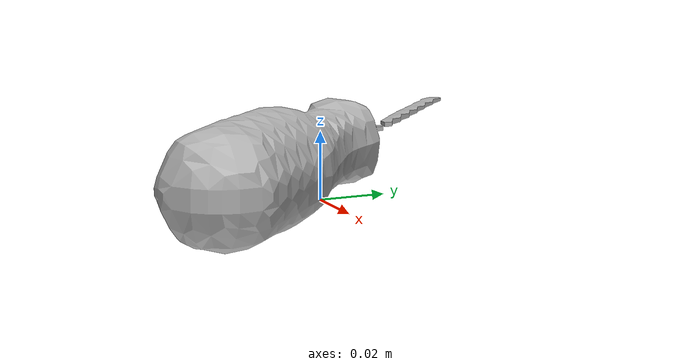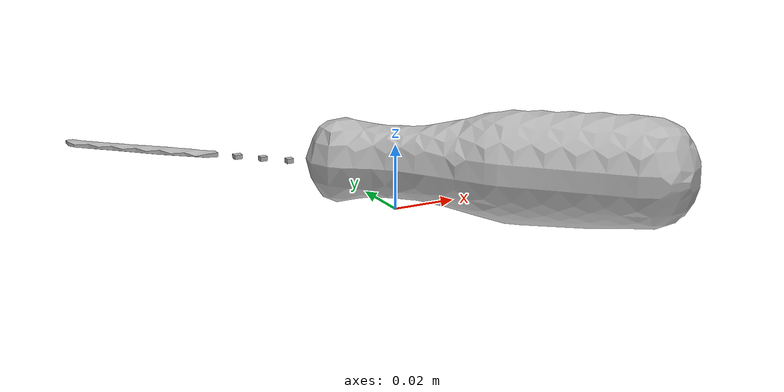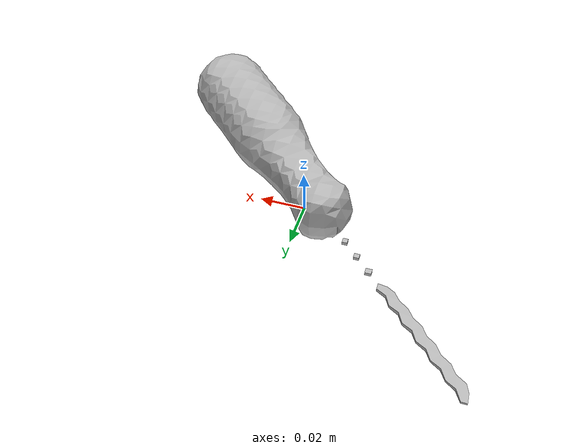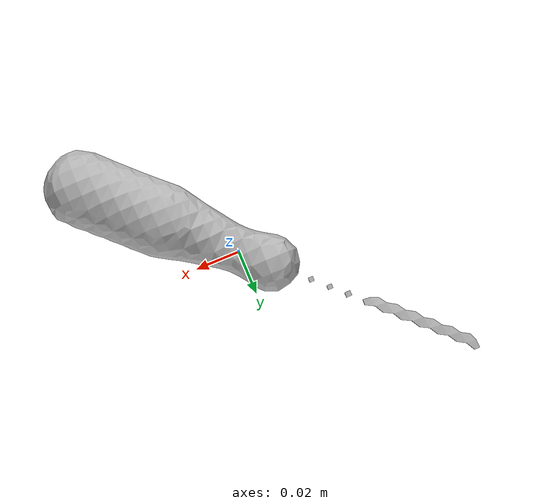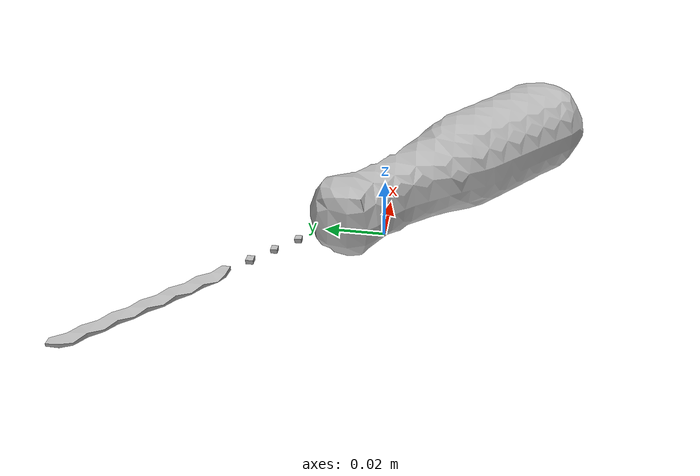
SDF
<?xml version='1.0'?>
<sdf version="1.4">
  <model name="flat_screwdriver">
    <static>false</static>
    <link name="link">
      <inertial>
        <pose>0.023228351441964463 -0.02270556071884342 0.016179821688211804 -1.685465166296971 -1.2285699396955838 0.9119711789659977</pose>
        <mass>7.621626182656017e-05</mass>
        <inertia>
          <ixx>1.0455872762990073e-07</ixx>
          <ixy>1.2978673122254933e-23</ixy>
          <ixz>7.690434192648382e-24</ixz>
          <iyy>1.045355134114841e-07</iyy>
          <iyz>8.454789472824443e-24</iyz>
          <izz>8.5096611833145e-09</izz>
        </inertia>
      </inertial>
      <collision name="collision">
        <geometry>
          <!-- Use a downsampled mesh for collisions -->
          <mesh>
            <uri>model://044_flat_screwdriver/google_16k/low_poly.obj</uri>
	        </mesh>
        </geometry>
        <surface>
        <friction>
          <ode>
            <mu>0.8</mu>
            <mu2>0.6</mu2>
          </ode>
        </friction>
      </surface>
      </collision>
      <visual name="visual">
        <geometry>
          <mesh>
            <uri>model://044_flat_screwdriver/google_16k/textured.obj</uri>
	        </mesh>
        </geometry>
        <material>
          <script>
            <uri>model://044_flat_screwdriver/flat_screwdriver.material</uri>
            <name>flat_screwdriver</name>
          </script>
        </material>
      </visual>
    </link>
  </model>
</sdf>
